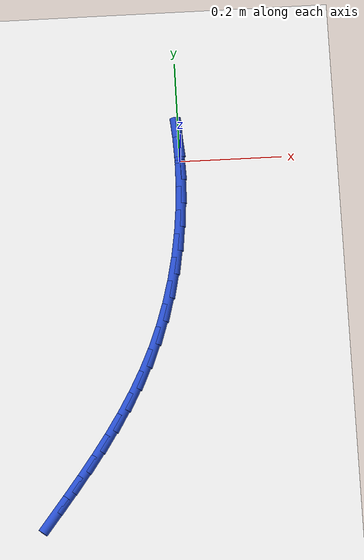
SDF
<sdf version="1.6">
 <world name="default">
  <model name="ground_plane">
   <static>1</static>
   <link name="link">
    <collision name="collision">
     <geometry><plane><normal>0 0 1</normal><size>100 100</size></plane></geometry>
     <surface><friction><ode><mu>100</mu><mu2>50</mu2></ode></friction></surface>
    </collision>
    <visual name="visual">
     <cast_shadows>0</cast_shadows>
     <geometry><plane><normal>0 0 1</normal><size>100 100</size></plane></geometry>
     <material>
      <script><uri>file://media/materials/scripts/gazebo.material</uri><name>Gazebo/WhiteGlow</name></script>
     </material>
    </visual>
   </link>
  </model>
  <model name="line">
   <link name="link_0">
    <pose>1.0408340855860843e-17 1.6653345369377348e-16 0.01 0 1.57 -1.5307785798557336</pose>
    <collision name="collision">
     <geometry><cylinder><radius>0.01</radius><length>0.08</length></cylinder></geometry>
    </collision>
    <visual name="visual">
     <material>
      <script><name>Gazebo/Blue</name><uri>file://media/materials/scripts/gazebo.material</uri></script>
     </material>
     <geometry><cylinder><radius>0.01</radius><length>0.08</length></cylinder></geometry>
    </visual>
   </link>
   <link name="link_1">
    <pose>-0.001858721512014307 0.04642263371088782 0.01 0 1.57 -1.4824107533614235</pose>
    <collision name="collision">
     <geometry><cylinder><radius>0.01</radius><length>0.08</length></cylinder></geometry>
    </collision>
    <visual name="visual">
     <material>
      <script><name>Gazebo/Blue</name><uri>file://media/materials/scripts/gazebo.material</uri></script>
     </material>
     <geometry><cylinder><radius>0.01</radius><length>0.08</length></cylinder></geometry>
    </visual>
   </link>
   <link name="link_144">
    <pose>-0.27327851307470363 -0.6823607901997657 0.01 0 1.57 0.9047974721104369</pose>
    <collision name="collision">
     <geometry><cylinder><radius>0.01</radius><length>0.08</length></cylinder></geometry>
    </collision>
    <visual name="visual">
     <material>
      <script><name>Gazebo/Blue</name><uri>file://media/materials/scripts/gazebo.material</uri></script>
     </material>
     <geometry><cylinder><radius>0.01</radius><length>0.08</length></cylinder></geometry>
    </visual>
   </link>
   <link name="link_145">
    <pose>-0.24386020991892055 -0.6449215960080599 0.01 0 1.57 0.9162549779104289</pose>
    <collision name="collision">
     <geometry><cylinder><radius>0.01</radius><length>0.08</length></cylinder></geometry>
    </collision>
    <visual name="visual">
     <material>
      <script><name>Gazebo/Blue</name><uri>file://media/materials/scripts/gazebo.material</uri></script>
     </material>
     <geometry><cylinder><radius>0.01</radius><length>0.08</length></cylinder></geometry>
    </visual>
   </link>
   <link name="link_146">
    <pose>-0.2150382374629829 -0.6073634048848823 0.01 0 1.57 0.9349916103517392</pose>
    <collision name="collision">
     <geometry><cylinder><radius>0.01</radius><length>0.08</length></cylinder></geometry>
    </collision>
    <visual name="visual">
     <material>
      <script><name>Gazebo/Blue</name><uri>file://media/materials/scripts/gazebo.material</uri></script>
     </material>
     <geometry><cylinder><radius>0.01</radius><length>0.08</length></cylinder></geometry>
    </visual>
   </link>
   <link name="link_147">
    <pose>-0.1870861490584058 -0.569490161732439 0.01 0 1.57 0.9611271208036846</pose>
    <collision name="collision">
     <geometry><cylinder><radius>0.01</radius><length>0.08</length></cylinder></geometry>
    </collision>
    <visual name="visual">
     <material>
      <script><name>Gazebo/Blue</name><uri>file://media/materials/scripts/gazebo.material</uri></script>
     </material>
     <geometry><cylinder><radius>0.01</radius><length>0.08</length></cylinder></geometry>
    </visual>
   </link>
   <link name="link_148">
    <pose>-0.16027749805670286 -0.5311058114529341 0.01 0 1.57 0.9947416841324197</pose>
    <collision name="collision">
     <geometry><cylinder><radius>0.01</radius><length>0.08</length></cylinder></geometry>
    </collision>
    <visual name="visual">
     <material>
      <script><name>Gazebo/Blue</name><uri>file://media/materials/scripts/gazebo.material</uri></script>
     </material>
     <geometry><cylinder><radius>0.01</radius><length>0.08</length></cylinder></geometry>
    </visual>
   </link>
   <link name="link_149">
    <pose>-0.1348858378093882 -0.49201429894857196 0.01 0 1.57 1.0358313435933697</pose>
    <collision name="collision">
     <geometry><cylinder><radius>0.01</radius><length>0.08</length></cylinder></geometry>
    </collision>
    <visual name="visual">
     <material>
      <script><name>Gazebo/Blue</name><uri>file://media/materials/scripts/gazebo.material</uri></script>
     </material>
     <geometry><cylinder><radius>0.01</radius><length>0.08</length></cylinder></geometry>
    </visual>
   </link>
   <link name="link_150">
    <pose>-0.11118472166797609 -0.45201956912155805 0.01 0 1.57 1.084251256842146</pose>
    <collision name="collision">
     <geometry><cylinder><radius>0.01</radius><length>0.08</length></cylinder></geometry>
    </collision>
    <visual name="visual">
     <material>
      <script><name>Gazebo/Blue</name><uri>file://media/materials/scripts/gazebo.material</uri></script>
     </material>
     <geometry><cylinder><radius>0.01</radius><length>0.08</length></cylinder></geometry>
    </visual>
   </link>
   <link name="link_151">
    <pose>-0.08944770298398023 -0.41092556687409565 0.01 0 1.57 1.139596391046516</pose>
    <collision name="collision">
     <geometry><cylinder><radius>0.01</radius><length>0.08</length></cylinder></geometry>
    </collision>
    <visual name="visual">
     <material>
      <script><name>Gazebo/Blue</name><uri>file://media/materials/scripts/gazebo.material</uri></script>
     </material>
     <geometry><cylinder><radius>0.01</radius><length>0.08</length></cylinder></geometry>
    </visual>
   </link>
   <link name="link_152">
    <pose>-0.06994663437417416 -0.36853877165862214 0.01 0 1.57 1.1979885928767098</pose>
    <collision name="collision">
     <geometry><cylinder><radius>0.01</radius><length>0.08</length></cylinder></geometry>
    </collision>
    <visual name="visual">
     <material>
      <script><name>Gazebo/Blue</name><uri>file://media/materials/scripts/gazebo.material</uri></script>
     </material>
     <geometry><cylinder><radius>0.01</radius><length>0.08</length></cylinder></geometry>
    </visual>
   </link>
   <link name="link_153">
    <pose>-0.05284889341406825 -0.32482135871805506 0.01 0 1.57 1.2542144439266096</pose>
    <collision name="collision">
     <geometry><cylinder><radius>0.01</radius><length>0.08</length></cylinder></geometry>
    </collision>
    <visual name="visual">
     <material>
      <script><name>Gazebo/Blue</name><uri>file://media/materials/scripts/gazebo.material</uri></script>
     </material>
     <geometry><cylinder><radius>0.01</radius><length>0.08</length></cylinder></geometry>
    </visual>
   </link>
   <link name="link_154">
    <pose>-0.03815850787949971 -0.27997893824281816 0.01 0 1.57 1.3082412311152296</pose>
    <collision name="collision">
     <geometry><cylinder><radius>0.01</radius><length>0.08</length></cylinder></geometry>
    </collision>
    <visual name="visual">
     <material>
      <script><name>Gazebo/Blue</name><uri>file://media/materials/scripts/gazebo.material</uri></script>
     </material>
     <geometry><cylinder><radius>0.01</radius><length>0.08</length></cylinder></geometry>
    </visual>
   </link>
   <link name="link_155">
    <pose>-0.025865287438176184 -0.23423830921213779 0.01 0 1.57 1.3605104791489768</pose>
    <collision name="collision">
     <geometry><cylinder><radius>0.01</radius><length>0.08</length></cylinder></geometry>
    </collision>
    <visual name="visual">
     <material>
      <script><name>Gazebo/Blue</name><uri>file://media/materials/scripts/gazebo.material</uri></script>
     </material>
     <geometry><cylinder><radius>0.01</radius><length>0.08</length></cylinder></geometry>
    </visual>
   </link>
   <link name="link_156">
    <pose>-0.01595904175780511 -0.18782627060523924 0.01 0 1.57 1.4114669810587086</pose>
    <collision name="collision">
     <geometry><cylinder><radius>0.01</radius><length>0.08</length></cylinder></geometry>
    </collision>
    <visual name="visual">
     <material>
      <script><name>Gazebo/Blue</name><uri>file://media/materials/scripts/gazebo.material</uri></script>
     </material>
     <geometry><cylinder><radius>0.01</radius><length>0.08</length></cylinder></geometry>
    </visual>
   </link>
   <link name="link_157">
    <pose>-0.008429580506094462 -0.1409696214013504 0.01 0 1.57 1.4615584366757561</pose>
    <collision name="collision">
     <geometry><cylinder><radius>0.01</radius><length>0.08</length></cylinder></geometry>
    </collision>
    <visual name="visual">
     <material>
      <script><name>Gazebo/Blue</name><uri>file://media/materials/scripts/gazebo.material</uri></script>
     </material>
     <geometry><cylinder><radius>0.01</radius><length>0.08</length></cylinder></geometry>
    </visual>
   </link>
   <link name="link_158">
    <pose>-0.0032667133507516535 -0.09389516057969674 0.01 0 1.57 1.5112379279265336</pose>
    <collision name="collision">
     <geometry><cylinder><radius>0.01</radius><length>0.08</length></cylinder></geometry>
    </collision>
    <visual name="visual">
     <material>
      <script><name>Gazebo/Blue</name><uri>file://media/materials/scripts/gazebo.material</uri></script>
     </material>
     <geometry><cylinder><radius>0.01</radius><length>0.08</length></cylinder></geometry>
    </visual>
   </link>
   <link name="link_159">
    <pose>-0.0004602499594842952 -0.04682968711950444 0.01 0 1.57 1.5609684767771081</pose>
    <collision name="collision">
     <geometry><cylinder><radius>0.01</radius><length>0.08</length></cylinder></geometry>
    </collision>
    <visual name="visual">
     <material>
      <script><name>Gazebo/Blue</name><uri>file://media/materials/scripts/gazebo.material</uri></script>
     </material>
     <geometry><cylinder><radius>0.01</radius><length>0.08</length></cylinder></geometry>
    </visual>
   </link>
   <link name="link_160">
    <pose>6.938893903907228e-18 2.7755575615628914e-16 0.01 0 1.57 -1.5303635462582392</pose>
    <collision name="collision">
     <geometry><cylinder><radius>0.01</radius><length>0.08</length></cylinder></geometry>
    </collision>
    <visual name="visual">
     <material>
      <script><name>Gazebo/Blue</name><uri>file://media/materials/scripts/gazebo.material</uri></script>
     </material>
     <geometry><cylinder><radius>0.01</radius><length>0.08</length></cylinder></geometry>
    </visual>
   </link>
   <link name="link_161">
    <pose>-0.0018757731400064273 0.04636710179959196 0.01 0 1.57 -1.5303635462582392</pose>
    <collision name="collision">
     <geometry><cylinder><radius>0.01</radius><length>0.08</length></cylinder></geometry>
    </collision>
    <visual name="visual">
     <material>
      <script><name>Gazebo/Blue</name><uri>file://media/materials/scripts/gazebo.material</uri></script>
     </material>
     <geometry><cylinder><radius>0.01</radius><length>0.08</length></cylinder></geometry>
    </visual>
   </link>
  </model>
 </world>
</sdf>
